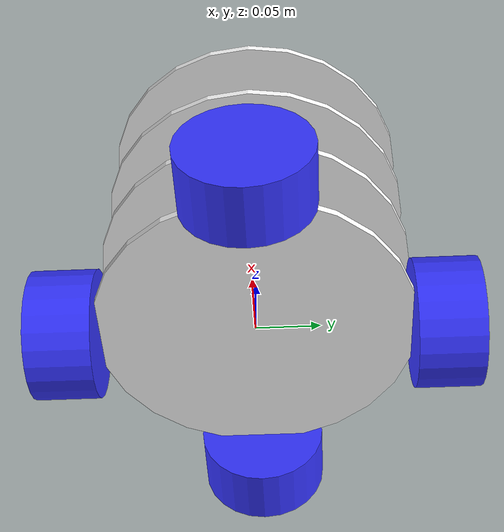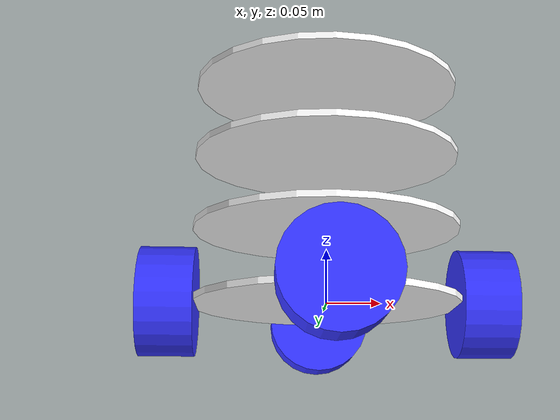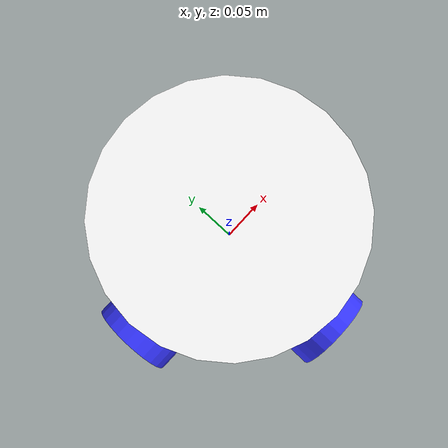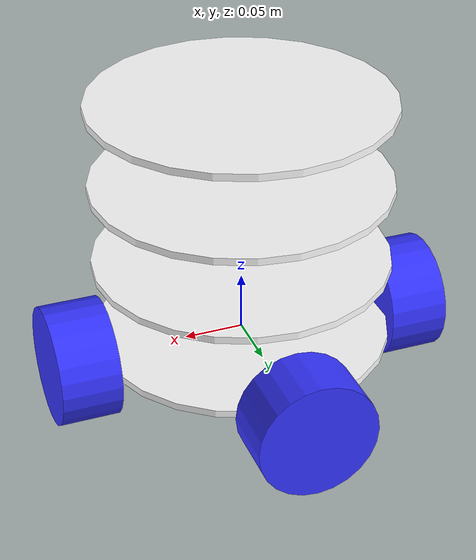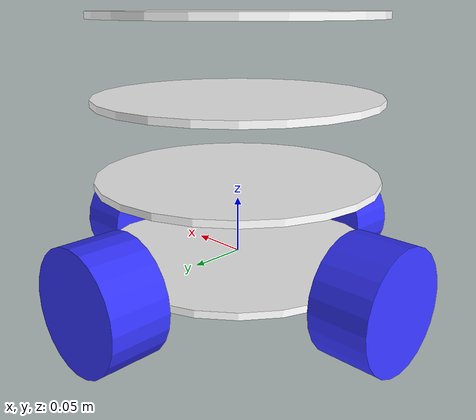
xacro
<?xml version="1.0"?>
<robot xmlns:xacro="http://www.ros.org/wiki/xacro">

    <!-- ######## COLORS ######## -->

    <material name="white">
        <color rgba="1 1 1 1" />
    </material>

    <material name="orange">
        <color rgba="1 0.3 0.1 1"/>
    </material>

    <material name="blue">
        <color rgba="0.2 0.2 1 1"/>
    </material>

    <material name="black">
        <color rgba="0 0 0 1"/>
    </material>

    <material name="red">
        <color rgba="1 0 0 1"/>
    </material>

    <!-- BASE LINK-->
    <link name="base_link">

    </link>

    <!-- ######## CHASSIS ######## -->

    <!-- JOINT -->
    <joint name="chassis_joint" type="fixed">
        <parent link="base_link"/>
        <child link="chassis"/>
        <origin xyz="0 0 0"/>
    </joint>

    <!-- LINK -->
    <link name="chassis">
        <visual>
            <origin xyz="0 0 0" rpy="0 0 0"/>
            <geometry>
                <cylinder radius="0.125" length="0.006"/>
            </geometry>
            <material name="white"/>
        </visual>
    </link>

    <!-- ######## PLATFORM 1 ######## -->

    <!-- JOINT -->
    <joint name="platform1_joint" type="fixed">
        <parent link="chassis"/>
        <child link="platform1"/>
        <origin xyz="0 0 0.07"/>
    </joint>

    <!-- LINK -->
    <link name="platform1">
        <visual>
            <origin xyz="0 0 0" rpy="0 0 0"/>
            <geometry>
                <cylinder radius="0.125" length="0.006"/>
            </geometry>
            <material name="white"/>
        </visual>
    </link>

    <!-- ######## PLATFORM 2 ######## -->

    <!-- JOINT -->
    <joint name="platform2_joint" type="fixed">
        <parent link="chassis"/>
        <child link="platform2"/>
        <origin xyz="0 0 0.14"/>
    </joint>

    <!-- LINK -->
    <link name="platform2">
        <visual>
            <origin xyz="0 0 0" rpy="0 0 0"/>
            <geometry>
                <cylinder radius="0.125" length="0.006"/>
            </geometry>
            <material name="white"/>
        </visual>
    </link>

    <!-- ######## PLATFORM 3 ######## -->

    <!-- JOINT -->
    <joint name="platform3_joint" type="fixed">
        <parent link="chassis"/>
        <child link="platform3"/>
        <origin xyz="0 0 0.21"/>
    </joint>

    <!-- LINK -->
    <link name="platform3">
        <visual>
            <origin xyz="0 0 0" rpy="0 0 0"/>
            <geometry>
                <cylinder radius="0.125" length="0.006"/>
            </geometry>
            <material name="white"/>
        </visual>
    </link>

    <!-- ######## RODA ESQUERDA ######## -->

    <!-- JUNTA -->
    <joint name="left_wheel_joint" type="continuous">
        <parent link="base_link"/>
        <child link="left_wheel"/>
        <origin xyz="0 0.145 0" rpy="${pi/2} 0 0"/>
        <axis xyz="0 0 1"/>
    </joint>

    <!-- LINK -->
    <link name="left_wheel">
        <visual>
            <origin xyz="0 0 0" rpy="0 0 0"/>
            <geometry>
                <cylinder radius="0.05" length="0.05"/>
            </geometry>
            <material name="blue"/>
        </visual>
    </link>

    <!-- ######## RODA DIREITA ######## -->

    <!-- JUNTA -->
    <joint name="right_wheel_joint" type="continuous">
        <parent link="base_link"/>
        <child link="right_wheel"/>
        <origin xyz="0 -0.145 0" rpy="${pi/2} 0 0"/>
        <axis xyz="0 0 -1"/>
    </joint>

    <!-- LINK -->
    <link name="right_wheel">
        <visual>
            <origin xyz="0 0 0" rpy="0 0 0"/>
            <geometry>
                <cylinder radius="0.05" length="0.05"/>
            </geometry>
            <material name="blue"/>
        </visual>
    </link>

    <!-- ######## RODA DIANTEIRA ######## -->

    <!-- JUNTA -->
    <joint name="front_wheel_joint" type="continuous">
        <parent link="base_link"/>
        <child link="front_wheel"/>
        <origin xyz="0.145 0 0" rpy="0 ${pi/2} 0"/>
        <axis xyz="0 0 1"/>
    </joint>

    <!-- LINK -->
    <link name="front_wheel">
        <visual>
            <origin xyz="0 0 0" rpy="0 0 0"/>
            <geometry>
                <cylinder radius="0.05" length="0.05"/>
            </geometry>
            <material name="blue"/>
        </visual>
    </link>

    <!-- ######## RODA TRASEIRA ######## -->

    <!-- JUNTA -->
    <joint name="back_wheel_joint" type="continuous">
        <parent link="base_link"/>
        <child link="back_wheel"/>
        <origin xyz="-0.145 0 0" rpy="0 ${pi/2} 0"/>
        <axis xyz="0 0 1"/>
    </joint>

    <!-- LINK -->
    <link name="back_wheel">
        <visual>
            <origin xyz="0 0 0" rpy="0 0 0"/>
            <geometry>
                <cylinder radius="0.05" length="0.05"/>
            </geometry>
            <material name="blue"/>
        </visual>
    </link>

</robot>
